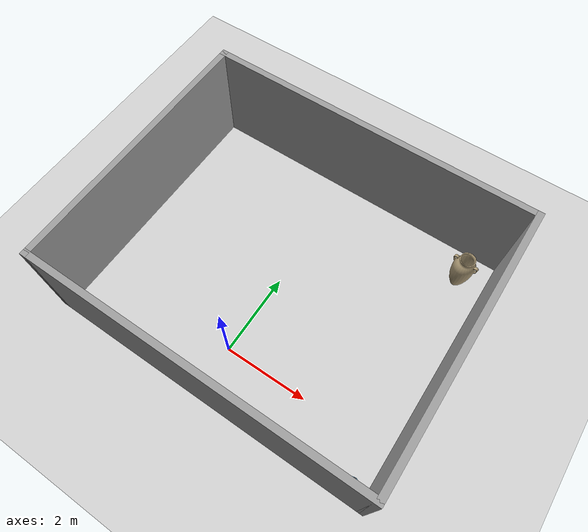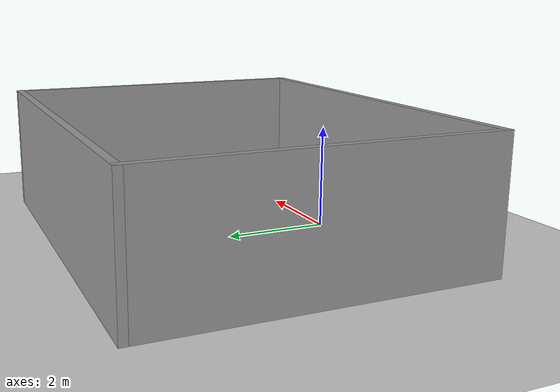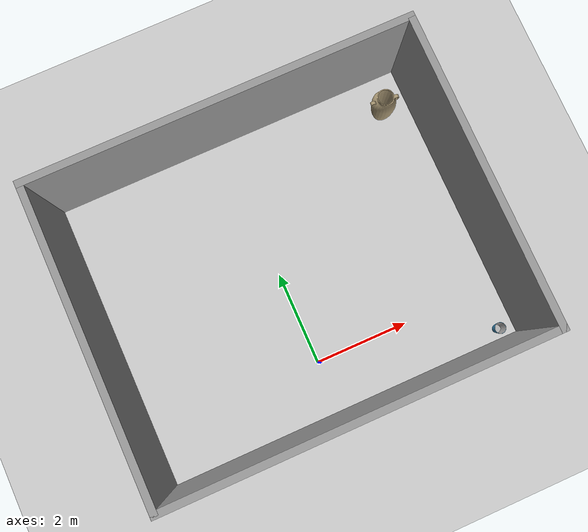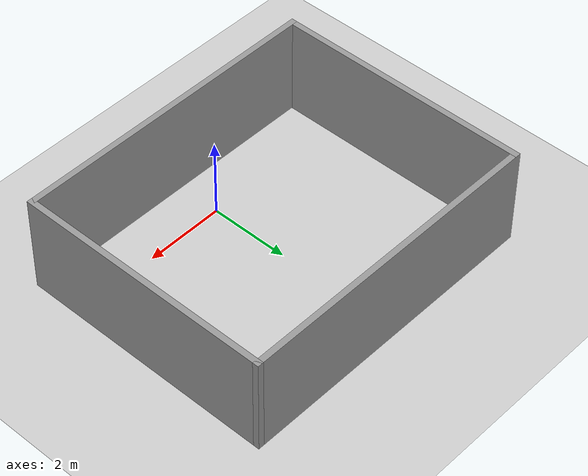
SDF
<sdf version="1.7">
 <world name="default">
  <light name="sun" type="directional">
   <pose>0 0 10 0 -0 0</pose>
   <diffuse>0.8 0.8 0.8 1</diffuse>
   <specular>0.2 0.2 0.2 1</specular>
   <attenuation>
    <range>1000</range>
    <constant>0.9</constant>
    <linear>0.01</linear>
    <quadratic>0.001</quadratic>
   </attenuation>
   <direction>-0.5 0.1 -0.9</direction>
   <spot><inner_angle>0</inner_angle><outer_angle>0</outer_angle><falloff>0</falloff></spot>
  </light>
  <model name="ground_plane">
   <static>1</static>
   <link name="link">
    <collision name="collision">
     <geometry><plane><normal>0 0 1</normal><size>100 100</size></plane></geometry>
     <surface>
      <contact><collide_bitmask>65535</collide_bitmask></contact>
      <friction><ode><mu>100</mu><mu2>50</mu2></ode></friction>
     </surface>
    </collision>
    <visual name="visual">
     <cast_shadows>0</cast_shadows>
     <geometry><plane><normal>0 0 1</normal><size>100 100</size></plane></geometry>
     <material>
      <script><uri>file://media/materials/scripts/gazebo.material</uri><name>Gazebo/Grey</name></script>
     </material>
    </visual>
   </link>
  </model>
  <gravity>0 0 -9.8</gravity>
  <magnetic_field>6e-06 2.3e-05 -4.2e-05</magnetic_field>
  <atmosphere type="adiabatic"/>
  <physics type="ode">
   <max_step_size>0.001</max_step_size>
   <real_time_factor>1</real_time_factor>
   <real_time_update_rate>1000</real_time_update_rate>
  </physics>
  <scene><ambient>0.4 0.4 0.4 1</ambient><background>0.7 0.7 0.7 1</background><shadows>1</shadows></scene>
  <spherical_coordinates>
   <surface_model>EARTH_WGS84</surface_model>
   <latitude_deg>0</latitude_deg>
   <longitude_deg>0</longitude_deg>
   <elevation>0</elevation>
   <heading_deg>0</heading_deg>
  </spherical_coordinates>
  <model name="test_world2">
   <pose>0.205 2.005 0 0 -0 0</pose>
   <link name="Wall_2">
    <collision name="Wall_2_Collision">
     <geometry><box><size>6.5 0.15 2.5</size></box></geometry>
     <pose>0 0 1.25 0 -0 0</pose>
    </collision>
    <visual name="Wall_2_Visual">
     <pose>0 0 1.25 0 -0 0</pose>
     <geometry><box><size>6.5 0.15 2.5</size></box></geometry>
     <material>
      <script><uri>file://media/materials/scripts/gazebo.material</uri><name>Gazebo/Grey</name></script>
      <ambient>1 1 1 1</ambient>
     </material>
     <meta><layer>0</layer></meta>
    </visual>
    <pose>3.925 0 0 0 -0 1.5708</pose>
   </link>
   <link name="Wall_3">
    <collision name="Wall_3_Collision">
     <geometry><box><size>8 0.15 2.5</size></box></geometry>
     <pose>0 0 1.25 0 -0 0</pose>
    </collision>
    <visual name="Wall_3_Visual">
     <pose>0 0 1.25 0 -0 0</pose>
     <geometry><box><size>8 0.15 2.5</size></box></geometry>
     <material>
      <script><uri>file://media/materials/scripts/gazebo.material</uri><name>Gazebo/Grey</name></script>
      <ambient>1 1 1 1</ambient>
     </material>
     <meta><layer>0</layer></meta>
    </visual>
    <pose>-0 3.175 0 0 -0 3.14159</pose>
   </link>
   <link name="Wall_4">
    <collision name="Wall_4_Collision">
     <geometry><box><size>6.5 0.15 2.5</size></box></geometry>
     <pose>0 0 1.25 0 -0 0</pose>
    </collision>
    <visual name="Wall_4_Visual">
     <pose>0 0 1.25 0 -0 0</pose>
     <geometry><box><size>6.5 0.15 2.5</size></box></geometry>
     <material>
      <script><uri>file://media/materials/scripts/gazebo.material</uri><name>Gazebo/Grey</name></script>
      <ambient>1 1 1 1</ambient>
     </material>
     <meta><layer>0</layer></meta>
    </visual>
    <pose>-3.925 0 0 0 -0 -1.5708</pose>
   </link>
   <link name="Wall_5">
    <collision name="Wall_5_Collision">
     <geometry><box><size>8 0.15 2.5</size></box></geometry>
     <pose>0 0 1.25 0 -0 0</pose>
    </collision>
    <visual name="Wall_5_Visual">
     <pose>0 0 1.25 0 -0 0</pose>
     <geometry><box><size>8 0.15 2.5</size></box></geometry>
     <material>
      <script><uri>file://media/materials/scripts/gazebo.material</uri><name>Gazebo/Grey</name></script>
      <ambient>1 1 1 1</ambient>
     </material>
     <meta><layer>0</layer></meta>
    </visual>
    <pose>-0 -3.175 0 0 -0 0</pose>
   </link>
   <static>1</static>
  </model>
  <model name="vase_large_2">
   <link name="link_31">
    <visual name="visual">
     <geometry><mesh><uri>model://vase_large_2/meshes/vase3_1.dae</uri><scale>1 1 1</scale></mesh></geometry>
     <material>
      <script>
       <uri>model://vase_large_2/materials/scripts</uri>
       <uri>model://vase_large_2/materials/textures</uri>
       <name>vase_pattern2</name>
      </script>
     </material>
    </visual>
    <collision name="collision">
     <geometry><mesh><uri>model://vase_large_2/meshes/vase3_1.dae</uri><scale>1 1 1</scale></mesh></geometry>
    </collision>
   </link>
   <static>1</static>
   <pose>3.40603 4.31738 0 0 -0 0</pose>
  </model>
  <model name="trash_bin">
   <link name="link_0">
    <visual name="visual">
     <geometry><mesh><uri>model://trash_bin/meshes/outer.dae</uri><scale>0.6 0.6 0.6</scale></mesh></geometry>
     <material>
      <lighting>1</lighting>
      <ambient>0.235 0.556 0.741 1</ambient>
      <diffuse>0.235 0.556 0.741 1</diffuse>
      <specular>0.01 0.01 0.01 1</specular>
      <emissive>0 0 0 1</emissive>
      <shader type="vertex"><normal_map>__default__</normal_map></shader>
     </material>
    </visual>
    <collision name="collision">
     <geometry><mesh><uri>model://trash_bin/meshes/outer.dae</uri><scale>0.6 0.6 0.6</scale></mesh></geometry>
    </collision>
   </link>
   <link name="link_1">
    <visual name="visual">
     <geometry><mesh><uri>model://trash_bin/meshes/inner.dae</uri><scale>0.6 0.6 0.6</scale></mesh></geometry>
     <material>
      <lighting>1</lighting>
      <ambient>0.9 0.9 0.9 1</ambient>
      <diffuse>0.7 0.7 0.7 1</diffuse>
      <specular>0.01 0.01 0.01 1</specular>
      <emissive>0 0 0 1</emissive>
      <shader type="vertex"><normal_map>__default__</normal_map></shader>
     </material>
    </visual>
    <collision name="collision">
     <geometry><mesh><uri>model://trash_bin/meshes/inner.dae</uri><scale>0.6 0.6 0.6</scale></mesh></geometry>
    </collision>
   </link>
   <static>1</static>
   <pose>3.70894 -0.879321 0 0 -0 0</pose>
  </model>
 </world>
</sdf>
